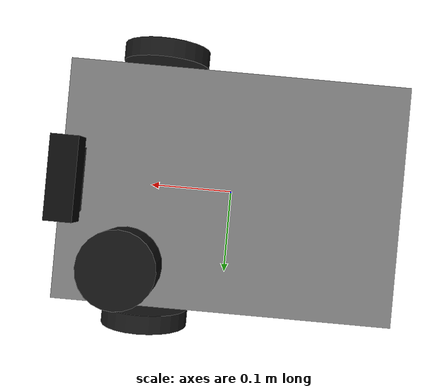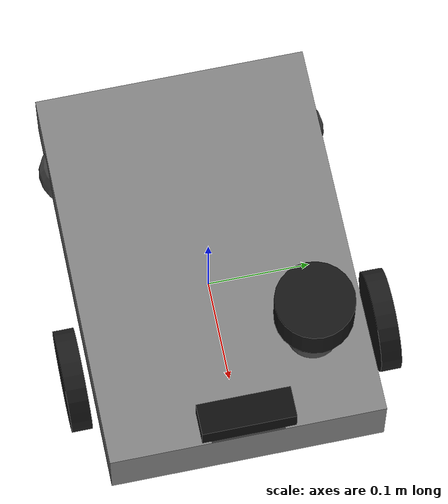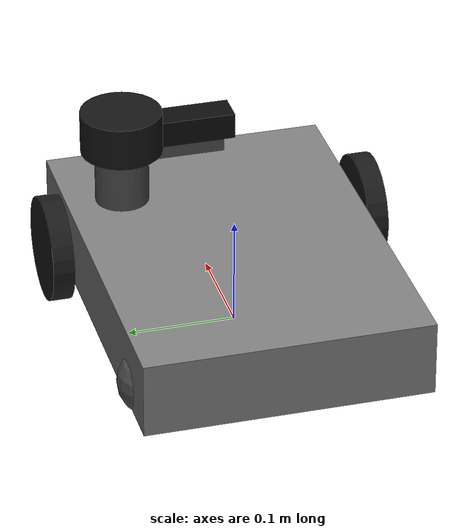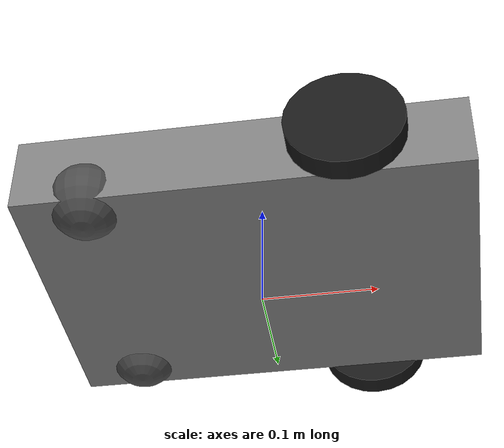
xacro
<?xml version="1.0"?>

<robot xmlns:xacro="http://www.ros.org/wiki/xacro"
       name="edgeai_robot">

  <!-- Robot parameters                                   -->
  <!-- x: forward, y: left, z: up                         -->

  <!-- Base -->
  <xacro:property name="base_length" value="0.375"/>
  <xacro:property name="base_width"  value="0.265"/>
  <xacro:property name="base_height" value="0.07"/>
  <xacro:property name="base_mass"   value="5.0"/>

  <!-- Wheels -->
  <xacro:property name="wheel_radius"     value="0.049"/>
  <xacro:property name="wheel_width"      value="0.020"/>
  <xacro:property name="wheel_separation" value="0.30"/>
  <xacro:property name="wheel_x"          value="0.0875"/>
  <xacro:property name="wheel_mass"       value="0.20"/>

    <!-- Casters: provisional dimensions -->
  <xacro:property name="caster_radius"     value="0.032"/>
  <xacro:property name="caster_x"          value="-0.13"/>
  <xacro:property name="caster_separation" value="0.22"/>
  <xacro:property name="caster_mass"       value="0.05"/>

  <!-- LiDAR: simplified RPLIDAR A1 -->
  <xacro:property name="lidar_radius" value="0.038"/>
  <xacro:property name="lidar_height" value="0.040"/>
  <xacro:property name="lidar_mass"   value="0.20"/>

  <!-- LiDAR mounting position relative to base_link -->
  <xacro:property name="lidar_x" value="0.10"/>
  <xacro:property name="lidar_y" value="0.08"/>
  <xacro:property name="lidar_z" value="0.106"/>

<!-- Intel RealSense D435i                              -->
<!-- Simplified geometric model                         -->

<xacro:property name="camera_length" value="0.090"/>
<xacro:property name="camera_depth"  value="0.030"/>
<xacro:property name="camera_height" value="0.025"/>
<xacro:property name="camera_mass"   value="0.10"/>

<!-- Camera mounting position relative to base_link -->
<xacro:property name="camera_x" value="0.175"/>
<xacro:property name="camera_y" value="0.0"/>
<xacro:property name="camera_z" value="0.061"/>

  <!-- Base footprint                                     -->

  <link name="base_footprint"/>

  <joint name="base_footprint_joint" type="fixed">
    <parent link="base_footprint"/>
    <child link="base_link"/>

    <!-- Put base_link at wheel-center height -->
    <origin xyz="0 0 ${wheel_radius}" rpy="0 0 0"/>
  </joint>

  <!-- Base link                                          -->

  <link name="base_link">

    <visual>
      <origin xyz="0 0 0" rpy="0 0 0"/>
      <geometry>
        <box size="${base_length} ${base_width} ${base_height}"/>
      </geometry>

      <material name="base_gray">
        <color rgba="0.5 0.5 0.5 1"/>
      </material>
    </visual>

  <!-- LiDAR mounting support -->
  <visual name="lidar_mount_visual">

    <origin
      xyz="${lidar_x} ${lidar_y} 0.0605"
      rpy="0 0 0"/>

    <geometry>
      <cylinder
        radius="0.025"
        length="0.051"/>
    </geometry>

    <material name="lidar_mount_gray">
      <color rgba="0.3 0.3 0.3 1"/>
    </material>

  </visual>

  <!-- Camera mounting support -->
<visual name="camera_mount_visual">

  <origin
    xyz="${camera_x} ${camera_y} 0.043"
    rpy="0 0 0"/>

  <geometry>
    <box size="0.025 0.070 0.025"/>
  </geometry>

  <material name="camera_mount_gray">
    <color rgba="0.3 0.3 0.3 1"/>
  </material>

  </visual>

    <collision>
      <origin xyz="0 0 0" rpy="0 0 0"/>
      <geometry>
        <box size="${base_length} ${base_width} ${base_height}"/>
      </geometry>
    </collision>

    <inertial>
      <origin xyz="0 0 0" rpy="0 0 0"/>
      <mass value="${base_mass}"/>

      <inertia
        ixx="0.0323"
        ixy="0"
        ixz="0"
        iyy="0.0582"
        iyz="0"
        izz="0.0707"/>
    </inertial>

  </link>

  <!-- Left wheel                                         -->

  <link name="left_wheel_link">

    <visual>
      <origin xyz="0 0 0" rpy="1.5708 0 0"/>
      <geometry>
        <cylinder radius="${wheel_radius}"
                  length="${wheel_width}"/>
      </geometry>

      <material name="wheel_black">
        <color rgba="0.1 0.1 0.1 1"/>
      </material>
    </visual>

    <collision>
      <origin xyz="0 0 0" rpy="1.5708 0 0"/>
      <geometry>
        <cylinder radius="${wheel_radius}"
                  length="${wheel_width}"/>
      </geometry>
    </collision>

    <inertial>
      <mass value="${wheel_mass}"/>
      <inertia
        ixx="0.00013"
        ixy="0"
        ixz="0"
        iyy="0.00024"
        iyz="0"
        izz="0.00013"/>
    </inertial>

  </link>

  <joint name="left_wheel_joint" type="continuous">

    <parent link="base_link"/>
    <child link="left_wheel_link"/>

  <origin
    xyz="${wheel_x} ${wheel_separation/2} 0"
    rpy="0 0 0"/>

    <axis xyz="0 1 0"/>

  </joint>

  <!-- Right wheel                                        -->

  <link name="right_wheel_link">

    <visual>
      <origin xyz="0 0 0" rpy="1.5708 0 0"/>
      <geometry>
        <cylinder radius="${wheel_radius}"
                  length="${wheel_width}"/>
      </geometry>

      <material name="wheel_black"/>
    </visual>

    <collision>
      <origin xyz="0 0 0" rpy="1.5708 0 0"/>
      <geometry>
        <cylinder radius="${wheel_radius}"
                  length="${wheel_width}"/>
      </geometry>
    </collision>

    <inertial>
      <mass value="${wheel_mass}"/>
      <inertia
        ixx="0.00013"
        ixy="0"
        ixz="0"
        iyy="0.00024"
        iyz="0"
        izz="0.00013"/>
    </inertial>

  </link>

  <joint name="right_wheel_joint" type="continuous">

    <parent link="base_link"/>
    <child link="right_wheel_link"/>

  <origin
    xyz="${wheel_x} ${-wheel_separation/2} 0"
    rpy="0 0 0"/>

    <axis xyz="0 1 0"/>

  </joint>

  <!-- Left rear caster                                   -->
  <!-- Simplified as a sphere for stable simulation       -->

  <link name="left_caster_link">

    <visual>
      <geometry>
        <sphere radius="${caster_radius}"/>
      </geometry>

      <material name="caster_gray">
        <color rgba="0.3 0.3 0.3 1"/>
      </material>
    </visual>

    <inertial>
      <mass value="${caster_mass}"/>
      <inertia
        ixx="0.0000205"
        ixy="0"
        ixz="0"
        iyy="0.0000205"
        iyz="0"
        izz="0.0000205"/>
    </inertial>

  </link>

  <joint name="left_caster_joint" type="fixed">

    <parent link="base_link"/>
    <child link="left_caster_link"/>

    <origin
      xyz="${caster_x} ${caster_separation/2} ${caster_radius-wheel_radius}"
      rpy="0 0 0"/>

  </joint>

  <!-- Right rear caster                                  -->

  <link name="right_caster_link">

    <visual>
      <geometry>
        <sphere radius="${caster_radius}"/>
      </geometry>

      <material name="caster_gray"/>
    </visual>

    <inertial>
      <mass value="${caster_mass}"/>
      <inertia
        ixx="0.0000205"
        ixy="0"
        ixz="0"
        iyy="0.0000205"
        iyz="0"
        izz="0.0000205"/>
    </inertial>

  </link>

  <joint name="right_caster_joint" type="fixed">

    <parent link="base_link"/>
    <child link="right_caster_link"/>

    <origin
      xyz="${caster_x} ${-caster_separation/2} ${caster_radius-wheel_radius}"
      rpy="0 0 0"/>

  </joint>

  <!-- RPLIDAR A1                                         -->
  <!-- Simplified cylindrical model                       -->

  <link name="lidar_link">

    <visual>
      <geometry>
        <cylinder
          radius="${lidar_radius}"
          length="${lidar_height}"/>
      </geometry>

      <material name="lidar_black">
        <color rgba="0.08 0.08 0.08 1"/>
      </material>
    </visual>

    <collision>
      <geometry>
        <cylinder
          radius="${lidar_radius}"
          length="${lidar_height}"/>
      </geometry>
    </collision>

    <inertial>
      <mass value="${lidar_mass}"/>
      <inertia
        ixx="0.0001"
        ixy="0"
        ixz="0"
        iyy="0.0001"
        iyz="0"
        izz="0.0001"/>
    </inertial>

  </link>

  <joint name="lidar_joint" type="fixed">

    <parent link="base_link"/>
    <child link="lidar_link"/>

    <origin
    xyz="${lidar_x} ${lidar_y} ${lidar_z}"
    rpy="0 0 0"/>

  </joint>

  <!-- Intel RealSense D435i                              -->
  <!-- Simplified visual model                            -->

  <link name="camera_link">

    <visual>

      <origin xyz="0 0 0" rpy="0 0 0"/>

      <geometry>
        <box size="${camera_depth} ${camera_length} ${camera_height}"/>
      </geometry>

      <material name="camera_black">
        <color rgba="0.05 0.05 0.05 1"/>
      </material>

    </visual>

    <collision>

      <origin xyz="0 0 0" rpy="0 0 0"/>

      <geometry>
        <box size="${camera_depth} ${camera_length} ${camera_height}"/>
      </geometry>

    </collision>

    <inertial>

      <mass value="${camera_mass}"/>

      <inertia
        ixx="0.000073"
        ixy="0"
        ixz="0"
        iyy="0.000024"
        iyz="0"
        izz="0.000074"/>

    </inertial>

  </link>

  <joint name="camera_joint" type="fixed">

    <parent link="base_link"/>
    <child link="camera_link"/>

    <origin
      xyz="${camera_x} ${camera_y} ${camera_z}"
      rpy="0 0 0"/>

  </joint>

  <!-- Camera optical frame -->
  <link name="camera_optical_frame"/>

    <joint name="camera_optical_joint" type="fixed">
      <parent link="camera_link"/>
      <child link="camera_optical_frame"/>

      <origin
        xyz="0 0 0"
        rpy="-1.5708 0 -1.5708"/>
    </joint>

    <!-- Gazebo RGB-D data frame -->
    <link name="camera_gz_frame"/>

    <joint name="camera_gz_joint" type="fixed">
      <parent link="camera_link"/>
      <child link="camera_gz_frame"/>
      <origin xyz="0 0 0" rpy="0 0 0"/>
    </joint>

  <!-- Gazebo LiDAR sensor                                -->

  <gazebo reference="lidar_link">

    <sensor name="lidar_sensor" type="gpu_lidar">

      <pose>0 0 0 0 0 0</pose>

      <topic>/scan</topic>

      <gz_frame_id>lidar_link</gz_frame_id>

      <update_rate>10</update_rate>

      <lidar>

        <scan>
          <horizontal>
            <samples>360</samples>
            <resolution>1</resolution>
            <min_angle>-3.14159</min_angle>
            <max_angle>3.14159</max_angle>
          </horizontal>
        </scan>

        <range>
          <min>0.15</min>
          <max>12.0</max>
          <resolution>0.01</resolution>
        </range>

      </lidar>

      <always_on>true</always_on>
      <visualize>true</visualize>

    </sensor>

  </gazebo>

  <!-- Gazebo RGB-D camera sensor                         -->

  <gazebo reference="camera_link">

    <sensor name="d435i_rgbd" type="rgbd_camera">

      <pose>0 0 0 0 0 0</pose>

      <topic>/camera</topic>

      <update_rate>30</update_rate>

      <camera>

        <optical_frame_id>camera_gz_frame</optical_frame_id>

        <horizontal_fov>1.518</horizontal_fov>

        <image>
          <width>640</width>
          <height>480</height>
          <format>R8G8B8</format>
        </image>

        <clip>
          <near>0.10</near>
          <far>10.0</far>
        </clip>

      </camera>

      <always_on>true</always_on>
      <visualize>true</visualize>

    </sensor>

  </gazebo>

  <!-- Gazebo differential drive                          -->

  <gazebo>
    <plugin
      filename="gz-sim-diff-drive-system"
      name="gz::sim::systems::DiffDrive">

      <left_joint>left_wheel_joint</left_joint>
      <right_joint>right_wheel_joint</right_joint>

      <wheel_separation>${wheel_separation}</wheel_separation>
      <wheel_radius>${wheel_radius}</wheel_radius>

      <odom_publish_frequency>50</odom_publish_frequency>

      <topic>/cmd_vel</topic>
      <odom_topic>/odom</odom_topic>
      <tf_topic>/tf</tf_topic>

      <frame_id>odom</frame_id>
      <child_frame_id>base_footprint</child_frame_id>

    </plugin>
  </gazebo>

  <!-- Gazebo JointStatePublisher                          -->
  <gazebo>
  <plugin
    filename="gz-sim-joint-state-publisher-system"
    name="gz::sim::systems::JointStatePublisher">

    <joint_name>left_wheel_joint</joint_name>
    <joint_name>right_wheel_joint</joint_name>

    <topic>/joint_states</topic>
  </plugin>
</gazebo>

</robot>
